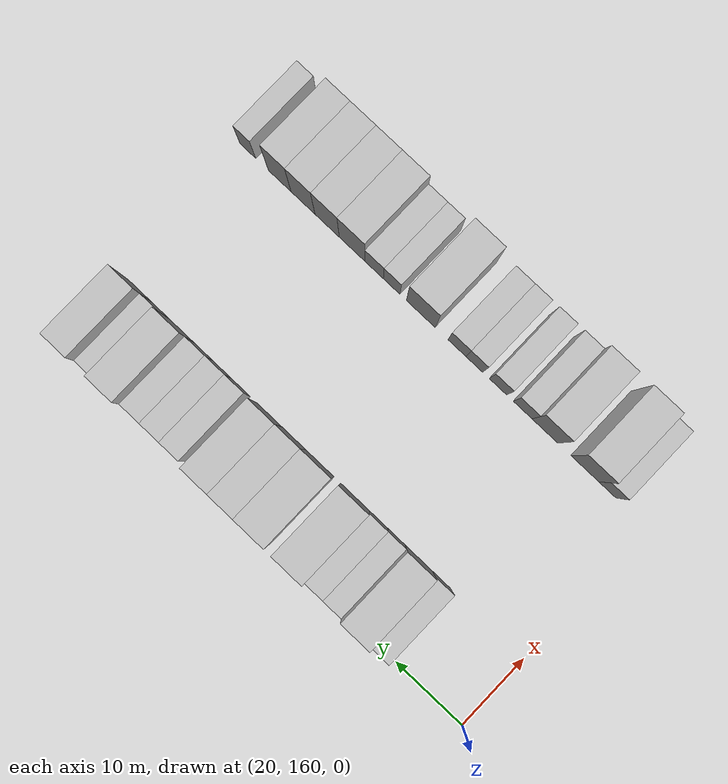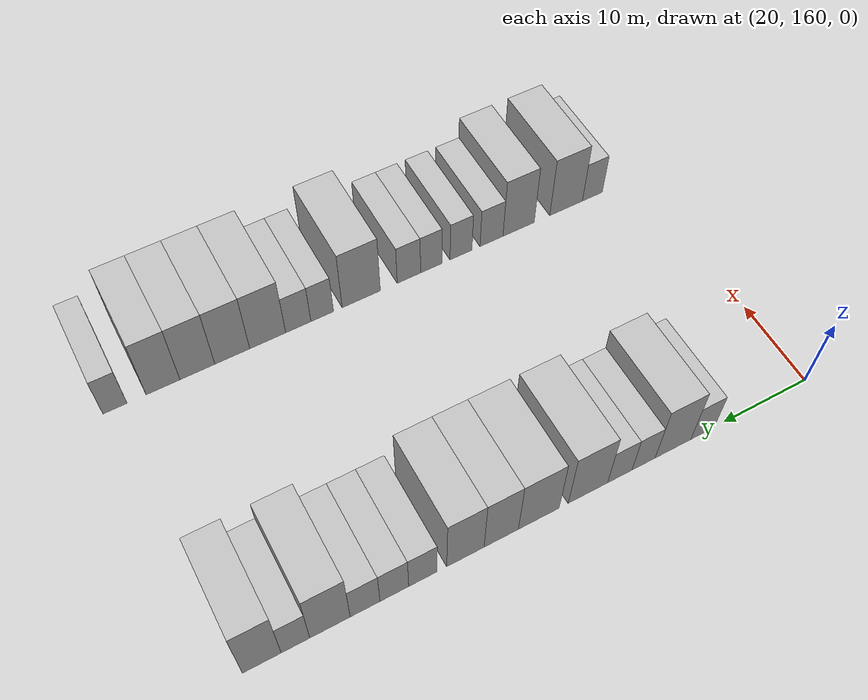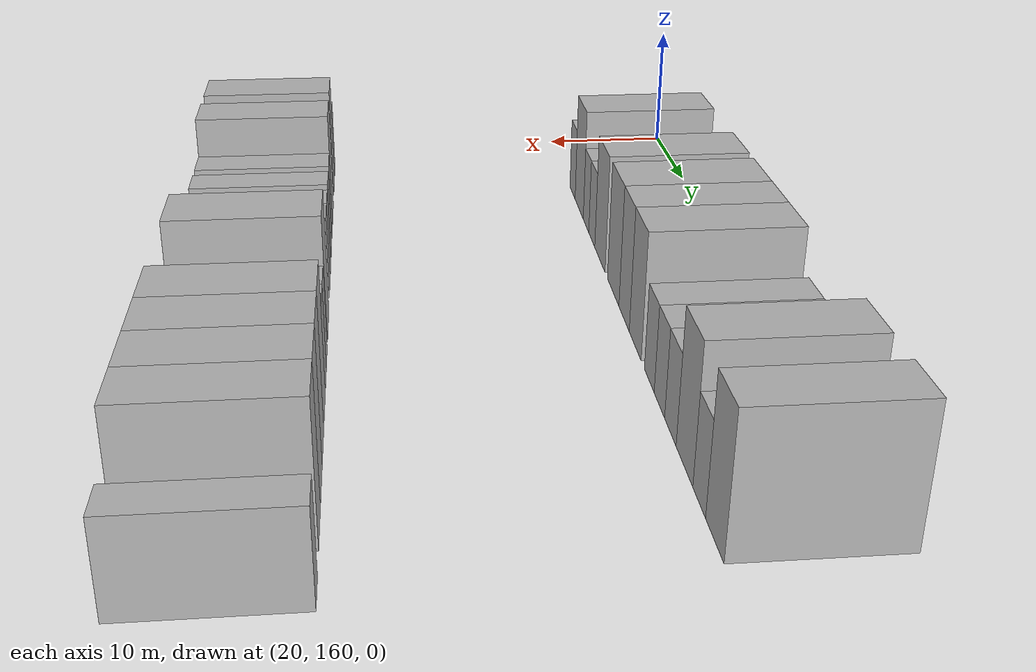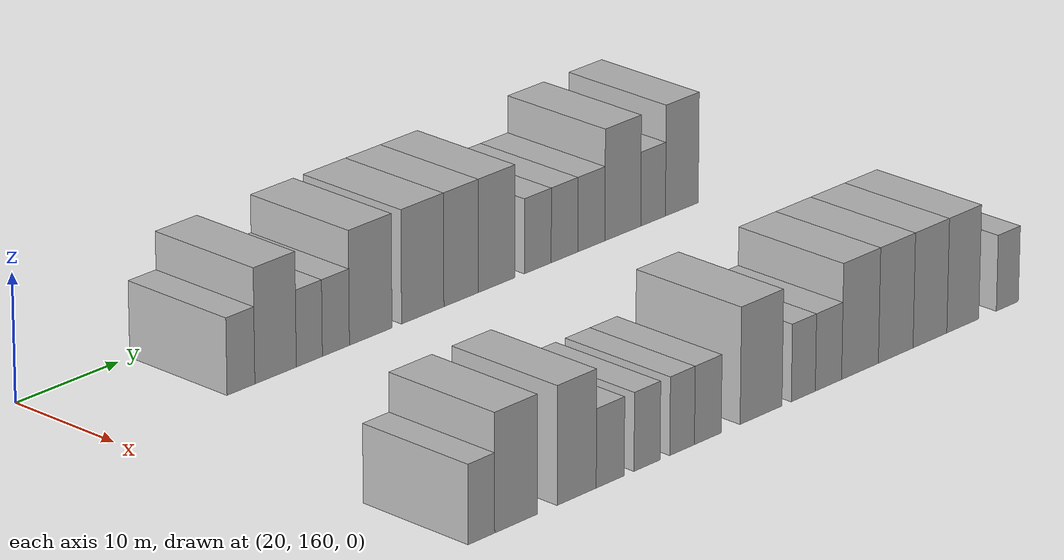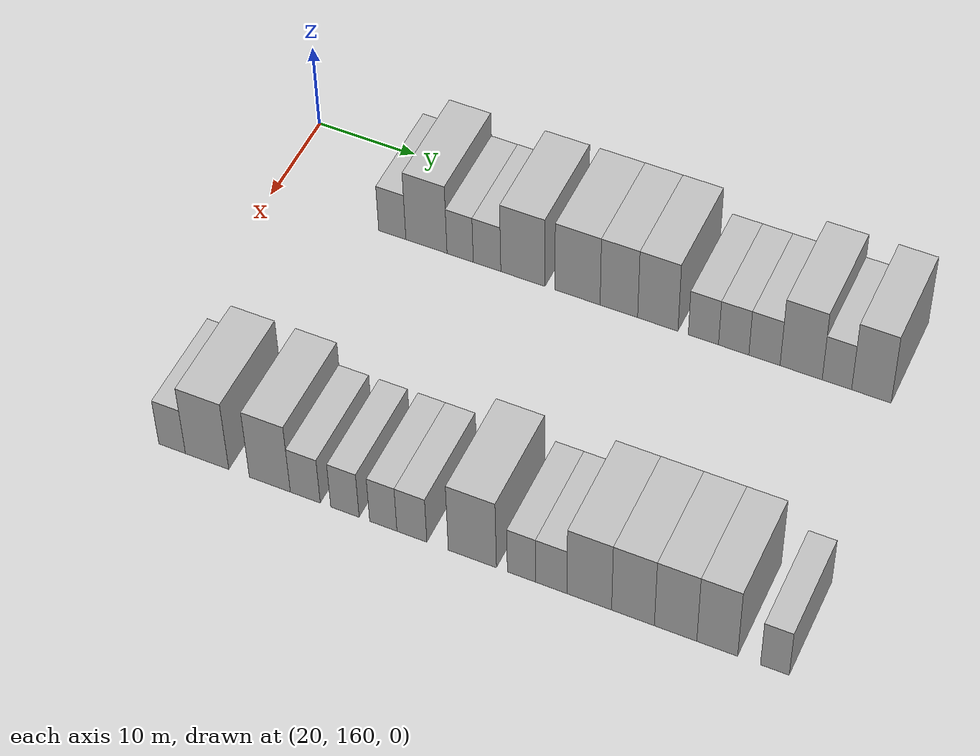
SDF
<sdf version="1.6">
 <world name="default">
  <model name="building_98">
   <static>1</static>
   <pose>25.0000 172.5586 0 0.000000 0.000000 0.000000</pose>
   <link name="link">
    <pose>0 0 3.00 0 0 0</pose>
    <collision name="collision"><geometry><box><size>10.0000 2.7874 6.0000</size></box></geometry></collision>
    <visual name="visual">
     <cast_shadows>0</cast_shadows>
     <geometry><box><size>10.0000 2.7874 6.0000</size></box></geometry>
     <material>
      <script>
       <uri>model://HANNAS_wall/materials/scripts</uri>
       <uri>model://HANNAS_wall/materials/textures</uri>
       <name>vrc/HANNAS_wall</name>
      </script>
     </material>
    </visual>
   </link>
  </model>
  <model name="building_99">
   <static>1</static>
   <pose>25.0000 176.0475 0 0.000000 0.000000 0.000000</pose>
   <link name="link">
    <pose>0 0 4.50 0 0 0</pose>
    <collision name="collision"><geometry><box><size>10.0000 4.1904 9.0000</size></box></geometry></collision>
    <visual name="visual">
     <cast_shadows>0</cast_shadows>
     <geometry><box><size>10.0000 4.1904 9.0000</size></box></geometry>
     <material>
      <script>
       <uri>model://HANNAS_wall/materials/scripts</uri>
       <uri>model://HANNAS_wall/materials/textures</uri>
       <name>vrc/HANNAS_wall</name>
      </script>
     </material>
    </visual>
   </link>
  </model>
  <model name="building_100">
   <static>1</static>
   <pose>25.0000 179.4709 0 0.000000 0.000000 0.000000</pose>
   <link name="link">
    <pose>0 0 3.00 0 0 0</pose>
    <collision name="collision"><geometry><box><size>10.0000 2.6563 6.0000</size></box></geometry></collision>
    <visual name="visual">
     <cast_shadows>0</cast_shadows>
     <geometry><box><size>10.0000 2.6563 6.0000</size></box></geometry>
     <material>
      <script>
       <uri>model://HANNAS_wall/materials/scripts</uri>
       <uri>model://HANNAS_wall/materials/textures</uri>
       <name>vrc/HANNAS_wall</name>
      </script>
     </material>
    </visual>
   </link>
  </model>
  <model name="building_101">
   <static>1</static>
   <pose>25.0000 182.1875 0 0.000000 0.000000 0.000000</pose>
   <link name="link">
    <pose>0 0 3.00 0 0 0</pose>
    <collision name="collision"><geometry><box><size>10.0000 2.7770 6.0000</size></box></geometry></collision>
    <visual name="visual">
     <cast_shadows>0</cast_shadows>
     <geometry><box><size>10.0000 2.7770 6.0000</size></box></geometry>
     <material>
      <script>
       <uri>model://HANNAS_wall/materials/scripts</uri>
       <uri>model://HANNAS_wall/materials/textures</uri>
       <name>vrc/HANNAS_wall</name>
      </script>
     </material>
    </visual>
   </link>
  </model>
  <model name="building_102">
   <static>1</static>
   <pose>25.0000 185.7847 0 0.000000 0.000000 0.000000</pose>
   <link name="link">
    <pose>0 0 4.50 0 0 0</pose>
    <collision name="collision"><geometry><box><size>10.0000 4.4173 9.0000</size></box></geometry></collision>
    <visual name="visual">
     <cast_shadows>0</cast_shadows>
     <geometry><box><size>10.0000 4.4173 9.0000</size></box></geometry>
     <material>
      <script>
       <uri>model://HANNAS_wall/materials/scripts</uri>
       <uri>model://HANNAS_wall/materials/textures</uri>
       <name>vrc/HANNAS_wall</name>
      </script>
     </material>
    </visual>
   </link>
  </model>
  <model name="building_103">
   <static>1</static>
   <pose>25.0000 191.2143 0 0.000000 0.000000 0.000000</pose>
   <link name="link">
    <pose>0 0 4.50 0 0 0</pose>
    <collision name="collision"><geometry><box><size>10.0000 4.4419 9.0000</size></box></geometry></collision>
    <visual name="visual">
     <cast_shadows>0</cast_shadows>
     <geometry><box><size>10.0000 4.4419 9.0000</size></box></geometry>
     <material>
      <script>
       <uri>model://HANNAS_wall/materials/scripts</uri>
       <uri>model://HANNAS_wall/materials/textures</uri>
       <name>vrc/HANNAS_wall</name>
      </script>
     </material>
    </visual>
   </link>
  </model>
  <model name="building_104">
   <static>1</static>
   <pose>25.0000 195.2744 0 0.000000 0.000000 0.000000</pose>
   <link name="link">
    <pose>0 0 4.50 0 0 0</pose>
    <collision name="collision"><geometry><box><size>10.0000 3.6783 9.0000</size></box></geometry></collision>
    <visual name="visual">
     <cast_shadows>0</cast_shadows>
     <geometry><box><size>10.0000 3.6783 9.0000</size></box></geometry>
     <material>
      <script>
       <uri>model://HANNAS_wall/materials/scripts</uri>
       <uri>model://HANNAS_wall/materials/textures</uri>
       <name>vrc/HANNAS_wall</name>
      </script>
     </material>
    </visual>
   </link>
  </model>
  <model name="building_105">
   <static>1</static>
   <pose>25.0000 199.0758 0 0.000000 0.000000 0.000000</pose>
   <link name="link">
    <pose>0 0 4.50 0 0 0</pose>
    <collision name="collision"><geometry><box><size>10.0000 3.9245 9.0000</size></box></geometry></collision>
    <visual name="visual">
     <cast_shadows>0</cast_shadows>
     <geometry><box><size>10.0000 3.9245 9.0000</size></box></geometry>
     <material>
      <script>
       <uri>model://HANNAS_wall/materials/scripts</uri>
       <uri>model://HANNAS_wall/materials/textures</uri>
       <name>vrc/HANNAS_wall</name>
      </script>
     </material>
    </visual>
   </link>
  </model>
  <model name="building_106">
   <static>1</static>
   <pose>25.0000 203.4934 0 0.000000 0.000000 0.000000</pose>
   <link name="link">
    <pose>0 0 3.00 0 0 0</pose>
    <collision name="collision"><geometry><box><size>10.0000 2.9106 6.0000</size></box></geometry></collision>
    <visual name="visual">
     <cast_shadows>0</cast_shadows>
     <geometry><box><size>10.0000 2.9106 6.0000</size></box></geometry>
     <material>
      <script>
       <uri>model://HANNAS_wall/materials/scripts</uri>
       <uri>model://HANNAS_wall/materials/textures</uri>
       <name>vrc/HANNAS_wall</name>
      </script>
     </material>
    </visual>
   </link>
  </model>
  <model name="building_107">
   <static>1</static>
   <pose>25.0000 206.4022 0 0.000000 0.000000 0.000000</pose>
   <link name="link">
    <pose>0 0 3.00 0 0 0</pose>
    <collision name="collision"><geometry><box><size>10.0000 2.9070 6.0000</size></box></geometry></collision>
    <visual name="visual">
     <cast_shadows>0</cast_shadows>
     <geometry><box><size>10.0000 2.9070 6.0000</size></box></geometry>
     <material>
      <script>
       <uri>model://HANNAS_wall/materials/scripts</uri>
       <uri>model://HANNAS_wall/materials/textures</uri>
       <name>vrc/HANNAS_wall</name>
      </script>
     </material>
    </visual>
   </link>
  </model>
  <model name="building_108">
   <static>1</static>
   <pose>25.0000 209.3434 0 0.000000 0.000000 0.000000</pose>
   <link name="link">
    <pose>0 0 3.00 0 0 0</pose>
    <collision name="collision"><geometry><box><size>10.0000 2.9755 6.0000</size></box></geometry></collision>
    <visual name="visual">
     <cast_shadows>0</cast_shadows>
     <geometry><box><size>10.0000 2.9755 6.0000</size></box></geometry>
     <material>
      <script>
       <uri>model://HANNAS_wall/materials/scripts</uri>
       <uri>model://HANNAS_wall/materials/textures</uri>
       <name>vrc/HANNAS_wall</name>
      </script>
     </material>
    </visual>
   </link>
  </model>
  <model name="building_109">
   <static>1</static>
   <pose>25.0000 212.8190 0 0.000000 0.000000 0.000000</pose>
   <link name="link">
    <pose>0 0 4.50 0 0 0</pose>
    <collision name="collision"><geometry><box><size>10.0000 3.9757 9.0000</size></box></geometry></collision>
    <visual name="visual">
     <cast_shadows>0</cast_shadows>
     <geometry><box><size>10.0000 3.9757 9.0000</size></box></geometry>
     <material>
      <script>
       <uri>model://HANNAS_wall/materials/scripts</uri>
       <uri>model://HANNAS_wall/materials/textures</uri>
       <name>vrc/HANNAS_wall</name>
      </script>
     </material>
    </visual>
   </link>
  </model>
  <model name="building_110">
   <static>1</static>
   <pose>25.0000 216.1886 0 0.000000 0.000000 0.000000</pose>
   <link name="link">
    <pose>0 0 3.00 0 0 0</pose>
    <collision name="collision"><geometry><box><size>10.0000 2.7635 6.0000</size></box></geometry></collision>
    <visual name="visual">
     <cast_shadows>0</cast_shadows>
     <geometry><box><size>10.0000 2.7635 6.0000</size></box></geometry>
     <material>
      <script>
       <uri>model://HANNAS_wall/materials/scripts</uri>
       <uri>model://HANNAS_wall/materials/textures</uri>
       <name>vrc/HANNAS_wall</name>
      </script>
     </material>
    </visual>
   </link>
  </model>
  <model name="building_111">
   <static>1</static>
   <pose>25.0000 219.4188 0 0.000000 0.000000 0.000000</pose>
   <link name="link">
    <pose>0 0 4.50 0 0 0</pose>
    <collision name="collision"><geometry><box><size>10.0000 3.6969 9.0000</size></box></geometry></collision>
    <visual name="visual">
     <cast_shadows>0</cast_shadows>
     <geometry><box><size>10.0000 3.6969 9.0000</size></box></geometry>
     <material>
      <script>
       <uri>model://HANNAS_wall/materials/scripts</uri>
       <uri>model://HANNAS_wall/materials/textures</uri>
       <name>vrc/HANNAS_wall</name>
      </script>
     </material>
    </visual>
   </link>
  </model>
  <model name="building_211">
   <static>1</static>
   <pose>55.0000 165.9485 0 0.000000 0.000000 0.000000</pose>
   <link name="link">
    <pose>0 0 3.00 0 0 0</pose>
    <collision name="collision"><geometry><box><size>10.0000 2.6155 6.0000</size></box></geometry></collision>
    <visual name="visual">
     <cast_shadows>0</cast_shadows>
     <geometry><box><size>10.0000 2.6155 6.0000</size></box></geometry>
     <material>
      <script>
       <uri>model://HANNAS_wall/materials/scripts</uri>
       <uri>model://HANNAS_wall/materials/textures</uri>
       <name>vrc/HANNAS_wall</name>
      </script>
     </material>
    </visual>
   </link>
  </model>
  <model name="building_212">
   <static>1</static>
   <pose>55.0000 169.3770 0 0.000000 0.000000 0.000000</pose>
   <link name="link">
    <pose>0 0 4.50 0 0 0</pose>
    <collision name="collision"><geometry><box><size>10.0000 4.2416 9.0000</size></box></geometry></collision>
    <visual name="visual">
     <cast_shadows>0</cast_shadows>
     <geometry><box><size>10.0000 4.2416 9.0000</size></box></geometry>
     <material>
      <script>
       <uri>model://HANNAS_wall/materials/scripts</uri>
       <uri>model://HANNAS_wall/materials/textures</uri>
       <name>vrc/HANNAS_wall</name>
      </script>
     </material>
    </visual>
   </link>
  </model>
  <model name="building_213">
   <static>1</static>
   <pose>55.0000 175.4785 0 0.000000 0.000000 0.000000</pose>
   <link name="link">
    <pose>0 0 4.50 0 0 0</pose>
    <collision name="collision"><geometry><box><size>10.0000 3.9614 9.0000</size></box></geometry></collision>
    <visual name="visual">
     <cast_shadows>0</cast_shadows>
     <geometry><box><size>10.0000 3.9614 9.0000</size></box></geometry>
     <material>
      <script>
       <uri>model://HANNAS_wall/materials/scripts</uri>
       <uri>model://HANNAS_wall/materials/textures</uri>
       <name>vrc/HANNAS_wall</name>
      </script>
     </material>
    </visual>
   </link>
  </model>
  <model name="building_214">
   <static>1</static>
   <pose>55.0000 178.8935 0 0.000000 0.000000 0.000000</pose>
   <link name="link">
    <pose>0 0 3.00 0 0 0</pose>
    <collision name="collision"><geometry><box><size>10.0000 2.8687 6.0000</size></box></geometry></collision>
    <visual name="visual">
     <cast_shadows>0</cast_shadows>
     <geometry><box><size>10.0000 2.8687 6.0000</size></box></geometry>
     <material>
      <script>
       <uri>model://HANNAS_wall/materials/scripts</uri>
       <uri>model://HANNAS_wall/materials/textures</uri>
       <name>vrc/HANNAS_wall</name>
      </script>
     </material>
    </visual>
   </link>
  </model>
  <model name="building_215">
   <static>1</static>
   <pose>55.0000 182.6767 0 0.000000 0.000000 0.000000</pose>
   <link name="link">
    <pose>0 0 3.00 0 0 0</pose>
    <collision name="collision"><geometry><box><size>10.0000 2.6977 6.0000</size></box></geometry></collision>
    <visual name="visual">
     <cast_shadows>0</cast_shadows>
     <geometry><box><size>10.0000 2.6977 6.0000</size></box></geometry>
     <material>
      <script>
       <uri>model://HANNAS_wall/materials/scripts</uri>
       <uri>model://HANNAS_wall/materials/textures</uri>
       <name>vrc/HANNAS_wall</name>
      </script>
     </material>
    </visual>
   </link>
  </model>
  <model name="building_216">
   <static>1</static>
   <pose>55.0000 186.3125 0 0.000000 0.000000 0.000000</pose>
   <link name="link">
    <pose>0 0 3.00 0 0 0</pose>
    <collision name="collision"><geometry><box><size>10.0000 2.5738 6.0000</size></box></geometry></collision>
    <visual name="visual">
     <cast_shadows>0</cast_shadows>
     <geometry><box><size>10.0000 2.5738 6.0000</size></box></geometry>
     <material>
      <script>
       <uri>model://HANNAS_wall/materials/scripts</uri>
       <uri>model://HANNAS_wall/materials/textures</uri>
       <name>vrc/HANNAS_wall</name>
      </script>
     </material>
    </visual>
   </link>
  </model>
  <model name="building_217">
   <static>1</static>
   <pose>55.0000 189.0023 0 0.000000 0.000000 0.000000</pose>
   <link name="link">
    <pose>0 0 3.00 0 0 0</pose>
    <collision name="collision"><geometry><box><size>10.0000 2.8058 6.0000</size></box></geometry></collision>
    <visual name="visual">
     <cast_shadows>0</cast_shadows>
     <geometry><box><size>10.0000 2.8058 6.0000</size></box></geometry>
     <material>
      <script>
       <uri>model://HANNAS_wall/materials/scripts</uri>
       <uri>model://HANNAS_wall/materials/textures</uri>
       <name>vrc/HANNAS_wall</name>
      </script>
     </material>
    </visual>
   </link>
  </model>
  <model name="building_218">
   <static>1</static>
   <pose>55.0000 194.6379 0 0.000000 0.000000 0.000000</pose>
   <link name="link">
    <pose>0 0 4.50 0 0 0</pose>
    <collision name="collision"><geometry><box><size>10.0000 4.4655 9.0000</size></box></geometry></collision>
    <visual name="visual">
     <cast_shadows>0</cast_shadows>
     <geometry><box><size>10.0000 4.4655 9.0000</size></box></geometry>
     <material>
      <script>
       <uri>model://HANNAS_wall/materials/scripts</uri>
       <uri>model://HANNAS_wall/materials/textures</uri>
       <name>vrc/HANNAS_wall</name>
      </script>
     </material>
    </visual>
   </link>
  </model>
  <model name="building_219">
   <static>1</static>
   <pose>55.0000 199.1669 0 0.000000 0.000000 0.000000</pose>
   <link name="link">
    <pose>0 0 3.00 0 0 0</pose>
    <collision name="collision"><geometry><box><size>10.0000 2.5924 6.0000</size></box></geometry></collision>
    <visual name="visual">
     <cast_shadows>0</cast_shadows>
     <geometry><box><size>10.0000 2.5924 6.0000</size></box></geometry>
     <material>
      <script>
       <uri>model://HANNAS_wall/materials/scripts</uri>
       <uri>model://HANNAS_wall/materials/textures</uri>
       <name>vrc/HANNAS_wall</name>
      </script>
     </material>
    </visual>
   </link>
  </model>
  <model name="building_220">
   <static>1</static>
   <pose>55.0000 201.8923 0 0.000000 0.000000 0.000000</pose>
   <link name="link">
    <pose>0 0 3.00 0 0 0</pose>
    <collision name="collision"><geometry><box><size>10.0000 2.8583 6.0000</size></box></geometry></collision>
    <visual name="visual">
     <cast_shadows>0</cast_shadows>
     <geometry><box><size>10.0000 2.8583 6.0000</size></box></geometry>
     <material>
      <script>
       <uri>model://HANNAS_wall/materials/scripts</uri>
       <uri>model://HANNAS_wall/materials/textures</uri>
       <name>vrc/HANNAS_wall</name>
      </script>
     </material>
    </visual>
   </link>
  </model>
  <model name="building_221">
   <static>1</static>
   <pose>55.0000 205.3383 0 0.000000 0.000000 0.000000</pose>
   <link name="link">
    <pose>0 0 4.50 0 0 0</pose>
    <collision name="collision"><geometry><box><size>10.0000 4.0339 9.0000</size></box></geometry></collision>
    <visual name="visual">
     <cast_shadows>0</cast_shadows>
     <geometry><box><size>10.0000 4.0339 9.0000</size></box></geometry>
     <material>
      <script>
       <uri>model://HANNAS_wall/materials/scripts</uri>
       <uri>model://HANNAS_wall/materials/textures</uri>
       <name>vrc/HANNAS_wall</name>
      </script>
     </material>
    </visual>
   </link>
  </model>
  <model name="building_222">
   <static>1</static>
   <pose>55.0000 209.2729 0 0.000000 0.000000 0.000000</pose>
   <link name="link">
    <pose>0 0 4.50 0 0 0</pose>
    <collision name="collision"><geometry><box><size>10.0000 3.8352 9.0000</size></box></geometry></collision>
    <visual name="visual">
     <cast_shadows>0</cast_shadows>
     <geometry><box><size>10.0000 3.8352 9.0000</size></box></geometry>
     <material>
      <script>
       <uri>model://HANNAS_wall/materials/scripts</uri>
       <uri>model://HANNAS_wall/materials/textures</uri>
       <name>vrc/HANNAS_wall</name>
      </script>
     </material>
    </visual>
   </link>
  </model>
  <model name="building_223">
   <static>1</static>
   <pose>55.0000 213.0774 0 0.000000 0.000000 0.000000</pose>
   <link name="link">
    <pose>0 0 4.50 0 0 0</pose>
    <collision name="collision"><geometry><box><size>10.0000 3.7739 9.0000</size></box></geometry></collision>
    <visual name="visual">
     <cast_shadows>0</cast_shadows>
     <geometry><box><size>10.0000 3.7739 9.0000</size></box></geometry>
     <material>
      <script>
       <uri>model://HANNAS_wall/materials/scripts</uri>
       <uri>model://HANNAS_wall/materials/textures</uri>
       <name>vrc/HANNAS_wall</name>
      </script>
     </material>
    </visual>
   </link>
  </model>
  <model name="building_224">
   <static>1</static>
   <pose>55.0000 216.7666 0 0.000000 0.000000 0.000000</pose>
   <link name="link">
    <pose>0 0 4.50 0 0 0</pose>
    <collision name="collision"><geometry><box><size>10.0000 3.6045 9.0000</size></box></geometry></collision>
    <visual name="visual">
     <cast_shadows>0</cast_shadows>
     <geometry><box><size>10.0000 3.6045 9.0000</size></box></geometry>
     <material>
      <script>
       <uri>model://HANNAS_wall/materials/scripts</uri>
       <uri>model://HANNAS_wall/materials/textures</uri>
       <name>vrc/HANNAS_wall</name>
      </script>
     </material>
    </visual>
   </link>
  </model>
  <model name="building_225">
   <static>1</static>
   <pose>55.0000 221.8254 0 0.000000 0.000000 0.000000</pose>
   <link name="link">
    <pose>0 0 3.00 0 0 0</pose>
    <collision name="collision"><geometry><box><size>10.0000 2.5131 6.0000</size></box></geometry></collision>
    <visual name="visual">
     <cast_shadows>0</cast_shadows>
     <geometry><box><size>10.0000 2.5131 6.0000</size></box></geometry>
     <material>
      <script>
       <uri>model://HANNAS_wall/materials/scripts</uri>
       <uri>model://HANNAS_wall/materials/textures</uri>
       <name>vrc/HANNAS_wall</name>
      </script>
     </material>
    </visual>
   </link>
  </model>
 </world>
</sdf>
